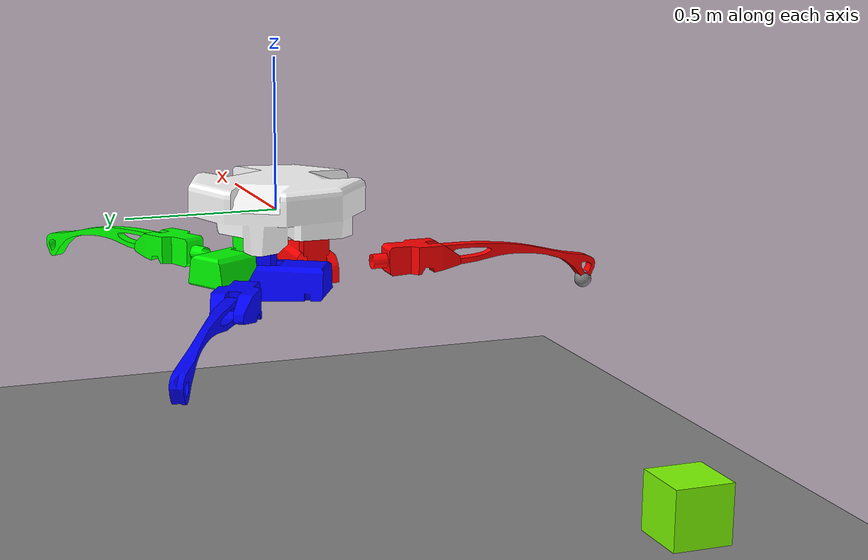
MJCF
<mujoco model="tripod">

    <compiler meshdir="assets/" angle="radian"/>

    <default>
        <joint damping="16"/>
        <motor ctrlrange="-.7 .7" ctrllimited="true"/>

        <default class="leg1">
            <geom rgba="1 0 0 1"/>
        </default>

        <default class="leg2">
            <geom rgba="0 1 0 1"/>
        </default>

        <default class="leg3">
            <geom rgba="0 0 1 1"/>
        </default>

    </default>

    <asset>
        <texture type="skybox" builtin="gradient" rgb1="1 1 1" rgb2=".6 .8 1"
                 width="256" height="256"/>
        <mesh name="base" file="base.stl"/>
        <mesh name="part1" file="part1.stl"/>
        <mesh name="part2" file="part2.stl"/>
        <mesh name="part3" file="part3.stl"/>
        <mesh name="part4" file="part4.stl"/>
    </asset>

    <worldbody>
    	<body>
    	    <geom type="box" size="0.1 0.1 0.1" pos="-1 -1 -0.8" friction="0.005 0.005 0.0001" rgba="0.5 1 0 1"/>
    	    <joint type="free"/>
    	</body>

    	<body>
    	    <geom type="plane" size="0 0 1" pos="0 0 -1"/>
    	</body>
        <body name="base">
        <joint type="free"/>
            <geom name="baseg" type="mesh" mesh="base" rgba="1 1 1 1"/>
            <body>
                <geom type="mesh" mesh="part1" pos="0 -0.132 -0.1" class="leg1"/>
                <joint name="part1_1j" type="hinge" pos="0 -0.132 -0.1" limited="true" range="-0.8727 0.8727"/>
                <body>
                    <geom type="mesh" mesh="part2" pos="0 -0.132 -0.204" class="leg1"/>
                    <joint name="part2_1j" type="hinge" pos="0 -0.132 -0.204" axis="1 0 0" limited="true" range="-0.261799 1.5708"/>
                    <body>
                        <geom type="mesh" mesh="part3" pos="0 -0.335 -0.2" class="leg1"/>
                        <joint name="part3_1j" type="hinge" pos="0 -0.335 -0.2" axis="0 1 0" limited="true" range="-0.0698 0.0698"/>
                        <body>
                            <geom type="mesh" mesh="part4" pos="0 -0.57 -0.195" friction="0.005 0.005 0.0001" class="leg1"/>
                            <joint name="part4_1j" type="hinge" pos="0 -0.57 -0.195" axis="1 0 0" limited="true" range="-0.872665 2.26893"/>
                            <site name="touch_site_1" pos="0 -1.13 -0.32" size="0.03 0.03 0.03"/>
                        </body>
                    </body>
                </body>
            </body>

            <body>
                <geom type="mesh" mesh="part1" pos="0.11432 0.066 -0.1" euler="0 0 2.0944" class="leg2"/>
                <joint name="part1_2j" type="hinge" pos="0.11432 0.066 -0.1" limited="true" range="-0.8727 0.8727"/>
                <body>
                    <geom type="mesh" mesh="part2" pos="0.11432 0.066 -0.204" euler="0 0 2.0944" class="leg2"/>
                    <joint name="part2_2j" type="hinge" pos="0.11432 0.066 -0.204" axis="-0.5 0.86603 0" limited="true" range="-0.261799 1.5708"/>
                    <body>
                        <geom type="mesh" mesh="part3" pos="0.29012 0.1675 -0.2" euler="0 0 2.0944" class="leg2"/>
                        <joint name="part3_2j" type="hinge" pos="0.29012 0.1675 -0.2" axis="0.86603 0.5 0" limited="true" range="-0.0698 0.0698"/>
                        <body>
                            <geom type="mesh" mesh="part4" pos="0.49363 0.285 -0.195" euler="0 0 2.0944" class="leg2"/>
                            <joint name="part4_2j" type="hinge" pos="0.49363 0.285 -0.195" axis="-0.5 0.86603 0" limited="true" range="-0.872665 2.26893"/>
                        </body>
                    </body>
                </body>
            </body>

            <body>
                <geom type="mesh" mesh="part1" pos="-0.11432 0.066 -0.1" euler="0 0 -2.0944" class="leg3"/>
                <joint name="part1_3j" type="hinge" pos="-0.11432 0.066 -0.1" limited="true" range="-0.8727 0.8727"/>
                <body>
                    <geom type="mesh" mesh="part2" pos="-0.11432 0.066 -0.204" euler="0 0 -2.0944" class="leg3"/>
                    <joint name="part2_3j" type="hinge" pos="-0.11432 0.066 -0.204" axis="-0.5 -0.86603 0" limited="true" range="-0.261799 1.5708"/>
                    <body>
                        <geom type="mesh" mesh="part3" pos="-0.29012 0.1675 -0.2" euler="0 0 -2.0944" class="leg3"/>
                        <joint name="part3_3j" type="hinge" pos="-0.29012 0.1675 -0.2" axis="-0.86603 0.5 0" limited="true" range="-0.0698 0.0698"/>
                        <body>
                            <geom type="mesh" mesh="part4" pos="-0.49363 0.285 -0.195" euler="0 0 -2.0944" class="leg3"/>
                            <joint name="part4_3j" type="hinge" pos="-0.49363 0.285 -0.195" axis="-0.5 -0.86603 0" limited="true" range="-0.872665 2.26893"/>
                        </body>
                    </body>
                </body>
            </body>

        </body>
    </worldbody>

    <sensor>
        <touch name="touch_1" site="touch_site_1"/>
    </sensor>

    <actuator>
        <motor name="part1_1j" gear="100" joint="part1_1j"/>
        <motor name="part2_1j" gear="200" joint="part2_1j"/>
        <motor name="part3_1j" gear="100" joint="part3_1j"/>
        <motor name="part4_1j" gear="200" joint="part4_1j"/>

        <motor name="part1_2j" gear="100" joint="part1_2j"/>
        <motor name="part2_2j" gear="200" joint="part2_2j"/>
        <motor name="part3_2j" gear="100" joint="part3_2j"/>
        <motor name="part4_2j" gear="200" joint="part4_2j"/>

        <motor name="part1_3j" gear="100" joint="part1_3j"/>
        <motor name="part2_3j" gear="200" joint="part2_3j"/>
        <motor name="part3_3j" gear="100" joint="part3_3j"/>
        <motor name="part4_3j" gear="200" joint="part4_3j"/>
    </actuator>
</mujoco>
